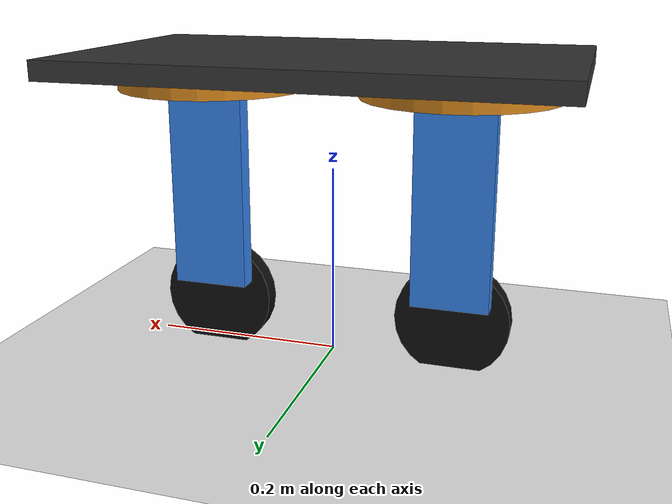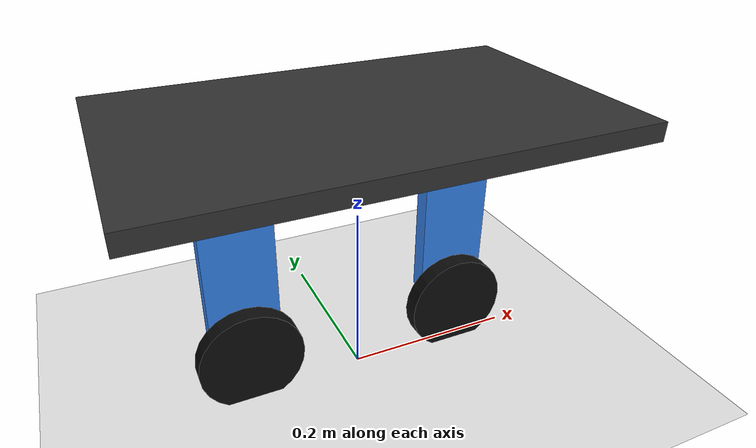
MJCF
<mujoco model="wheelleg_scene">
  <compiler angle="radian" coordinate="local" inertiafromgeom="true" />
  <option timestep="0.002" gravity="0 0 -9.81" integrator="RK4" cone="elliptic" />

  <include file="robot.xml" />

  <worldbody>
    <!-- 地面 -->
    <geom name="ground" type="plane" size="5 5 0.1" rgba="0.92 0.92 0.92 1" friction="1.5 0.005 0.0001" />
    <!-- 光源 -->
    <light name="sun" pos="0 0 2" dir="0 0 -1" diffuse="0.8 0.8 0.8" specular="0.2 0.2 0.2" />
    <!-- 相机 -->
    <camera name="track" mode="trackcom" pos="0 -1.2 0.6" xyaxes="1 0 0 0 0 1" />
  </worldbody>
</mujoco>

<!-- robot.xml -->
<mujocoinclude>
  <default>
    <joint damping="0.2" armature="0.01" />
    <geom friction="1.2 0.005 0.0001" solref="0.02 1" solimp="0.9 0.95 0.001" />
  </default>

  <asset>
    <material name="mat_chassis" rgba="0.2 0.2 0.2 1" />
    <material name="mat_leg" rgba="0.2 0.5 0.9 1" />
    <material name="mat_wheel" rgba="0.05 0.05 0.05 1" />
    <material name="mat_servo" rgba="0.8 0.5 0.1 1" />
  </asset>

  <worldbody>
    <!-- 坐标系：x 向前，y 向左，z 向上 -->
    <body name="chassis" pos="0 0 0.31">
      <!-- 分解式 6 自由度关节 -->
      <joint name="base_x" type="slide" axis="1 0 0" />
      <joint name="base_y" type="slide" axis="0 1 0" />
      <joint name="base_z" type="slide" axis="0 0 1" />
      <joint name="base_roll" type="hinge" axis="1 0 0" />
      <joint name="base_1" type="hinge" axis="0 1 0" />
      <joint name="base_2" type="hinge" axis="0 0 1" />

      <!-- 薄矩形主体：参与碰撞（全身可与地面接触） -->
      <geom
        name="chassis_geom"
        type="box"
        size="0.25 0.15 0.01"
        mass="6.87"
        material="mat_chassis" />

      <!-- 参考点：控制器位置（重心由 MuJoCo 根据质量自动计算） -->
      <site name="ctrl_site" pos="0.15 0 0" size="0.01" rgba="0 1 0 1" />

      <!-- 前轮腿模块：转向 + 轮子旋转（前后排布，类似自行车） -->
      <body name="left_module" pos="0.13 0 -0.02" >
        <!-- 转向关节：绕 z 轴 360° 水平旋转 -->
<joint name="left_steer" type="hinge" axis="0 0 1" damping="0.2" />

        <!-- 圆柱舵机外形（参与碰撞） -->
        <geom
          name="left_servo_geom"
          type="cylinder"
          size="0.1 0.01"
          mass="0.304"
          material="mat_servo" />

        <!-- 腿部连杆（矩形块，中心相对舵机圆心偏移） -->
        <geom
          name="left_leg_geom"
          type="box"
          pos="0 0.02 -0.10"
          size="0.04 0.01 0.12"
          mass="5"
          material="mat_leg" />

        <!-- 轮子位于腿部末端（轮心保持在舵机圆心正下方） -->
        <body name="left_wheel" pos="0 0 -0.24">
          <!-- 轮子转动关节：绕局部 y 轴旋转（前进/后退） -->
          <joint name="left_wheel_spin" type="hinge" axis="0 1 0" damping="0.05" />
          <geom
            name="left_wheel_geom"
            type="cylinder"
            size="0.06 0.01"
            quat="0.7071068 0.7071068 0 0"
            mass="0.828"
            material="mat_wheel" />
        </body>
      </body>

      <!-- 后轮腿模块：转向 + 轮子旋转（前后排布，类似自行车） -->
      <body name="right_module" pos="-0.13 0 -0.02" >
        <!-- 转向关节：绕 z 轴 360° 水平旋转 -->
        <joint name="right_steer" type="hinge" axis="0 0 1" damping="0.2" />

        <!-- 圆柱舵机外形（参与碰撞） -->
        <geom
          name="right_servo_geom"
          type="cylinder"
          size="0.1 0.01"
          mass="0.304"
          material="mat_servo" />

        <!-- 腿部连杆（矩形块，中心相对舵机圆心偏移） -->
        <geom
          name="right_leg_geom"
          type="box"
          pos="0 0.02 -0.10"
          size="0.04 0.01 0.12"
          mass="5"
          material="mat_leg" />

        <!-- 轮子位于腿部末端（轮心保持在舵机圆心正下方） -->
        <body name="right_wheel" pos="0 0 -0.24">
          <!-- 轮子转动关节：绕局部 y 轴旋转（前进/后退） -->
          <joint name="right_wheel_spin" type="hinge" axis="0 1 0" damping="0.05" />
          <geom
            name="right_wheel_geom"
            type="cylinder"
            size="0.06 0.01"
            quat="0.7071068 0.7071068 0 0"
            mass="0.828"
            material="mat_wheel" />
        </body>
      </body>
    </body>
  </worldbody>

  <actuator>
    <!-- 转向控制：位置控制，输入为目标角度（弧度） -->
    <position name="left_steer_pos" joint="left_steer" kp="10" ctrlrange="-3.1416 3.1416" />
    <position name="right_steer_pos" joint="right_steer" kp="10" ctrlrange="-3.1416 3.1416" />

    <!-- 轮子控制：力矩控制，LQR 输出可直接作为控制量 -->
    <motor name="left_wheel_tau" joint="left_wheel_spin" gear="1" ctrlrange="-200 200" />
    <motor name="right_wheel_tau" joint="right_wheel_spin" gear="1" ctrlrange="-200 200" />
  </actuator>
</mujocoinclude>
